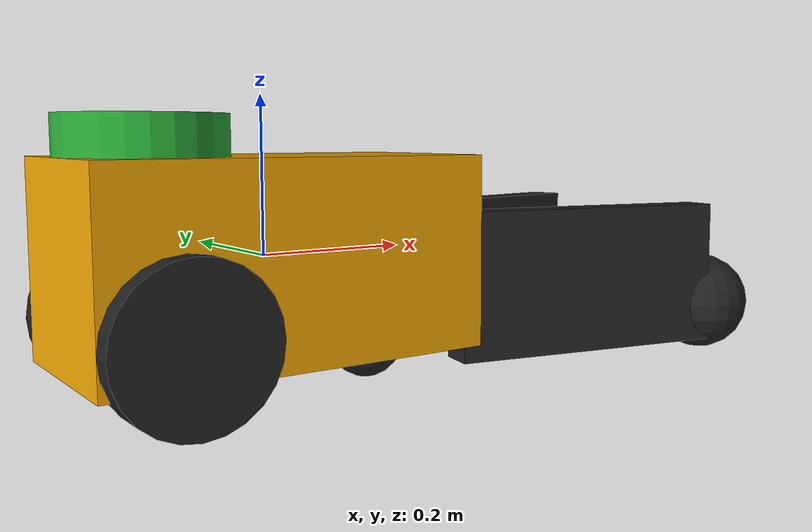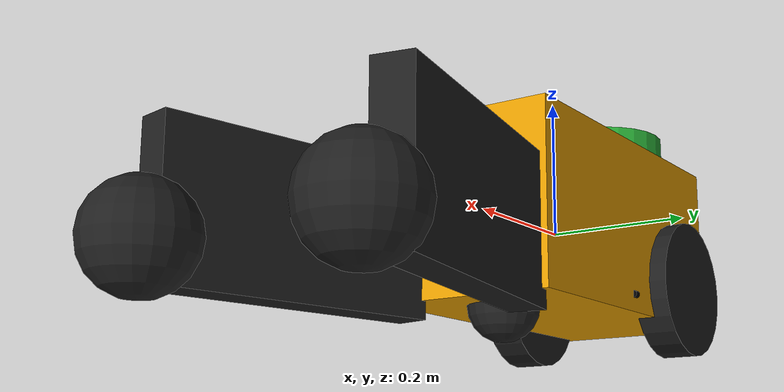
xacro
<?xml version="1.0"?>
<robot name="my_robot" xmlns:xacro="http://wiki.ros.org/xacro">

	<xacro:include filename="$(find scaraball_description)/urdf/inertias.xacro"/>

	<link name="base_link">
		<visual>
			<geometry>
				<box size="0.5 0.25 0.25"/>
			</geometry>
		</visual>
		<collision>
  			<geometry>
           		<box size="0.5 0.25 0.25"/>
        	</geometry>
  		</collision>
  		<xacro:box_inertial mass="1." sx="0.5" sy="0.25" sz="0.25">
			<origin xyz="0 0 0" rpy="0 0 0"/>
		</xacro:box_inertial>
	</link>

	<link name="lidar">
   		<visual>
     		<geometry>
			<cylinder length="0.05" radius="0.1"/>
     		</geometry>
   		</visual>
		<collision>
  			<geometry>
       			<cylinder length="0.05" radius="0.1"/>
        	</geometry>
  		</collision>
		<xacro:cylinder_inertial mass="0.05" r="0.1" l="0.05">
			<origin rpy="0 0 0" xyz="0 0 0"/>
		</xacro:cylinder_inertial>
	</link>

	<gazebo reference="lidar">
		<material>Gazebo/Green</material>
	</gazebo>

	<link name="rightwheel">
		<visual>
			<geometry>
         			<cylinder length="0.05" radius="0.1"/>
			</geometry>
       	</visual>
		<collision>
  			<geometry>
       				<cylinder length="0.05" radius="0.1"/>
        		</geometry>
  		</collision>
    		<xacro:cylinder_inertial mass="0.3" r="0.1" l="0.05">
			<origin rpy="0 0 0" xyz="0 0 0"/>
		</xacro:cylinder_inertial>
     </link>

	<gazebo reference="rightwheel">
		<mu1>2.0</mu1>
		<mu2>2.0</mu2>
		<kp>500000.0</kp>
		<kd>10.0</kd>
		<minDepth>0.001</minDepth>
		<maxVel>0.1</maxVel>
		<material>Gazebo/FlatBlack</material>
	</gazebo>

	<link name="leftwheel">
   		<visual>
     		<geometry>
			<cylinder length="0.05" radius="0.1"/>
     		</geometry>
   		</visual>
		<collision>
  			<geometry>
       				<cylinder length="0.05" radius="0.1"/>
        		</geometry>
  		</collision>
    		<xacro:cylinder_inertial mass="0.3" r="0.1" l="0.05">
			<origin rpy="0 0 0" xyz="0 0 0"/>
		</xacro:cylinder_inertial>
     	</link>

	<gazebo reference="leftwheel">
		<mu1>2.0</mu1>
		<mu2>2.0</mu2>
		<kp>500000.0</kp>
		<kd>10.0</kd>
		<minDepth>0.001</minDepth>
		<maxVel>0.1</maxVel>
		<material>Gazebo/FlatBlack</material>
	</gazebo>

	<link name="crazywheel">
   		<visual>
     		<geometry>
			<sphere radius="0.05"/>
     		</geometry>
   		</visual>
		<collision>
  			<geometry>
       				<sphere radius="0.05"/>
        		</geometry>
  		</collision>
    		<xacro:sphere_inertial mass="0.05" r="0.05">
			<origin rpy="0 0 0" xyz="0 0 0"/>
		</xacro:sphere_inertial>
	</link>

	<gazebo reference="crazywheel">
		<mu1>0.1</mu1>
		<mu2>0.1</mu2>
		<kp>500000.0</kp>
		<kd>10.0</kd>
		<minDepth>0.001</minDepth>
		<maxVel>0.1</maxVel>
		<material>Gazebo/FlatBlack</material>
	</gazebo>

	<link name="bras_droit">
       	<visual>
       		<origin xyz = "0.29 0 0"/>
         		<geometry>
				<box size="0.40 0.05 0.2"/>
         		</geometry>
       		</visual>
		<collision>
			<origin xyz = "0.29 0 0"/>
  			<geometry>
           			<box size="0.40 0.05 0.2"/>
        		</geometry>
      		</collision>
    		<xacro:box_inertial mass="0.1" sx="0.2" sy="0.05" sz="0.05">
			<origin xyz="0 0 0" rpy="0 0 0"/>
		</xacro:box_inertial>
	</link>

	<link name="bras_gauche">
       	<visual>
       		<origin xyz = "0.29 0 0"/>
     		<geometry>
			<box size="0.40 0.05 0.2"/>
     		</geometry>
   		</visual>
		<collision>
			<origin xyz = "0.29 0 0"/>
  				<geometry>
       			<box size="0.40 0.05 0.2"/>
        	</geometry>
  		</collision>
    		<xacro:box_inertial mass="0.1" sx="0.2" sy="0.05" sz="0.05">
			<origin xyz="0 0 0" rpy="0 0 0"/>
		</xacro:box_inertial>
	</link>

	<link name="boule_gauche">
       	<visual>
     		<geometry>
			<sphere radius="0.07"/>
     		</geometry>
   		</visual>
		<collision>
  			<geometry>
           		<sphere radius="0.07"/>
        	</geometry>
      		</collision>
    		<xacro:sphere_inertial mass="0.05" r="0.05">
			<origin xyz="0 0 0" rpy="0 0 0"/>
		</xacro:sphere_inertial>
	</link>

	<gazebo reference="boule_gauche">
   		<selfCollide>true</selfCollide>
		<mu1>0.1</mu1>
		<mu2>0.1</mu2>
		<kp>500000.0</kp>
		<kd>10.0</kd>
		<minDepth>0.001</minDepth>
		<maxVel>0.1</maxVel>
		<material>Gazebo/FlatBlack</material>
	</gazebo>

	<link name="boule_droite">
       		<visual>
     			<geometry>
				<sphere radius="0.07"/>
     			</geometry>
       		</visual>
		<collision>
  			<geometry>
           			<sphere radius="0.07"/>
        		</geometry>
      		</collision>
    		<xacro:sphere_inertial mass="0.05" r="0.05">
			<origin rpy="0 0 0" xyz="0 0 0"/>
		</xacro:sphere_inertial>
	</link>

	<gazebo reference="boule_droite">
    		<selfCollide>true</selfCollide>
		<mu1>0.1</mu1>
		<mu2>0.1</mu2>
		<kp>500000.0</kp>
		<kd>10.0</kd>
		<minDepth>0.001</minDepth>
		<maxVel>0.1</maxVel>
		<material>Gazebo/FlatBlack</material>
	</gazebo>

	<gazebo reference="bras_gauche">
    		<selfCollide>true</selfCollide>
		<mu1>0.1</mu1>
		<mu2>0.1</mu2>
		<kp>500000.0</kp>
		<kd>10.0</kd>
		<minDepth>0.001</minDepth>
		<maxVel>0.1</maxVel>
		<material>Gazebo/FlatBlack</material>
	</gazebo>

	<gazebo reference="bras_droit">
    		<selfCollide>true</selfCollide>
		<mu1>0.1</mu1>
		<mu2>0.1</mu2>
		<kp>500000.0</kp>
		<kd>10.0</kd>
		<minDepth>0.001</minDepth>
		<maxVel>0.1</maxVel>
		<material>Gazebo/FlatBlack</material>
	</gazebo>

	<link name="vacuum_gripper">
		<gravity>0</gravity>
	    	<visual>
	    		<origin rpy="0 0 0" xyz="0 0 0"/>
	      			<geometry>
					<cylinder radius="0.005" length="0.01"/>
	      			</geometry>
	      		<material name="transparent">
				<color rgba="0 0 0 0"/>
	      		</material>
	    	</visual>
      		<xacro:sphere_inertial mass="0.05" r="0.05">
      			<origin rpy="0 0 0" xyz="0 0 0"/>
    		</xacro:sphere_inertial>
	  </link>

	<joint name="base_to_lidar" type="fixed">
     		<parent link="base_link"/>
     		<child link="lidar"/>
		<origin rpy="0 0 0" xyz="-0.15 0 0.15"/>
	</joint>

	<joint name="base_to_rightwheel" type="continuous">
     		<parent link="base_link"/>
     		<child link="rightwheel"/>
		<origin rpy="-1.57 0 0" xyz="-0.15 -0.130 -0.075"/>
		<axis xyz="0 0 1" />
	</joint>

	<joint name="base_to_leftwheel" type="continuous">
     		<parent link="base_link"/>
     		<child link="leftwheel"/>
		<origin rpy="-1.57 0 0" xyz="-0.15 0.125 -0.075"/>
		<axis xyz="0 0 1" />
	</joint>

	<joint name="base_to_crazywheel" type="fixed">
     		<parent link="base_link"/>
     		<child link="crazywheel"/>
     		<origin rpy="0 0 0" xyz="0.15 0 -0.125"/>
	</joint>

	<joint name="base_to_bras_droit" type="continuous">
     		<parent link="base_link"/>
     		<child link="bras_droit"/>
		<origin rpy="0 0 -0.2" xyz="0.15 -0.07 -0.05"/>
		<axis xyz="0 0 1" />
	</joint>
		<joint name="base_to_bras_gauche" type="continuous">
     		<parent link="base_link"/>
     		<child link="bras_gauche"/>
		<origin rpy="0 0 0.2" xyz="0.15 0.07 -0.05"/>
		<axis xyz="0 0 1" />
	</joint>

	<joint name="bras_gauche_to_boule" type="fixed">
	     	<parent link="bras_gauche"/>
	     	<child link="boule_gauche"/>
		<origin rpy="0 0 0" xyz="0.51 -0.02 -0.05"/>
	</joint>

	<joint name="bras_droite_to_boule" type="fixed">
     		<parent link="bras_droit"/>
     		<child link="boule_droite"/>
		<origin rpy="0 0 0" xyz="0.51 0.02 -0.05"/>
	</joint>

	<joint name="gripper_joint" type="revolute">
	      <axis xyz="1 0 0" />
	      <parent link="base_link" />
	      <child link="vacuum_gripper" />
	      <origin rpy="0 1.5708 0" xyz="0.0 0.125 -0.1" />
	      <limit effort="50" velocity="50" lower="0" upper="0" />
	      <dynamics damping="0.0" friction="10"/>
	</joint>

	<gazebo>
		<plugin name='diff_drive' filename='libgazebo_ros_diff_drive.so'>
			<ros> <!-- Remap default topics -->
	         		<argument>cmd_vel:=cmd_roues</argument>
	          		<argument>odom:=odom_roues</argument>
	        	</ros>

        		<!-- wheels -->
			<left_joint>base_to_leftwheel</left_joint>
			<right_joint>base_to_rightwheel</right_joint>

			<!-- kinematics -->
			<wheel_separation>0.25</wheel_separation>
			<wheel_diameter>0.2</wheel_diameter>

			<!-- limits -->
			<max_wheel_torque>20</max_wheel_torque>
			<max_wheel_acceleration>1.0</max_wheel_acceleration>

			<!-- output -->
			<publish_odom>true</publish_odom>
			<publish_odom_tf>true</publish_odom_tf>
			<publish_wheel_tf>true</publish_wheel_tf>

			<odometry_frame>odom</odometry_frame>
			<robot_base_frame>base_link</robot_base_frame>
		</plugin>
	</gazebo>

	<gazebo>
		<plugin name='diff_drive_pince' filename='libgazebo_ros_diff_drive.so'>

			<ros> <!-- Remap default topics -->
			  <argument>cmd_vel:=cmd_pince</argument>
			  <argument>odom:=odom_pince</argument>
			</ros>

			<!-- wheels -->
			<left_joint>base_to_bras_droit</left_joint>
			<right_joint>base_to_bras_gauche</right_joint>

			<!-- kinematics -->
			<wheel_separation>0.25</wheel_separation>
			<wheel_diameter>0.2</wheel_diameter>

			<!-- limits -->
			<max_wheel_torque>20</max_wheel_torque>
			<max_wheel_acceleration>1.0</max_wheel_acceleration>

			<!-- output -->
			<publish_odom>true</publish_odom>
			<publish_odom_tf>true</publish_odom_tf>
			<publish_wheel_tf>true</publish_wheel_tf>

			<odometry_frame>odom</odometry_frame>
			<robot_base_frame>base_link</robot_base_frame>
		</plugin>
	</gazebo>

	<gazebo>
		<plugin name="gazebo_ros_vacuum_gripper" filename="libgazebo_ros_vacuum_gripper.so">
			<link_name>vacuum_gripper</link_name>
	  		<max_force>0.5</max_force>
	  		<max_distance>2.</max_distance>
	      	</plugin>
	</gazebo>

</robot>

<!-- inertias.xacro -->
<robot name="macros" xmlns:xacro="http://wiki.ros.org/xacro">

	<xacro:macro name="default_inertial" params="mass">
		<inertial>
			<mass value="${mass}" />
			<inertia ixx="0.01" ixy="0.0" ixz="0.0" iyy="0.01" iyz="0.0" izz="0.01" />
		</inertial>
	</xacro:macro>

	<xacro:macro name="box_inertial" params="mass sx sy sz *origin">
		<inertial>
			<mass value="${mass}" />
			<xacro:insert_block name="origin"/>
			<inertia ixx="${(1/12)*mass*(sz*sz+sy*sy)}" ixy="0.0" ixz="0.0"
					 iyy="${(1/12)*mass*(sz*sz+sx*sx)}" iyz="0.0"
					 izz="${(1/12)*mass*(sx*sx+sy*sy)}" />
			</inertial>
	</xacro:macro>

	<xacro:macro name="cylinder_inertial" params="mass r l *origin">
		<inertial>
			<mass value="${mass}" />
			<xacro:insert_block name="origin"/>
			<inertia ixx="${(1/12)*mass*(3*r*r+l*l)}" ixy="0.0" ixz="0.0"
					 iyy="${(1/12)*mass*(3*r*r+l*l)}" iyz="0.0"
					 izz="${(1/2)*mass*(r*r)}" />
		</inertial>
	</xacro:macro>

	<xacro:macro name="sphere_inertial" params="mass r *origin">
		<inertial>
			<mass value="${mass}" />
			<xacro:insert_block name="origin"/>
			<inertia ixx="${(2/3)*mass*(r*r)}" ixy="0.0" ixz="0.0"
					 iyy="${(2/3)*mass*(r*r)}" iyz="0.0"
					 izz="${(2/3)*mass*(r*r)}" />
		</inertial>
	</xacro:macro>

</robot>
